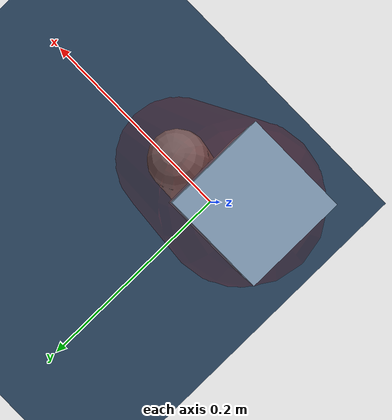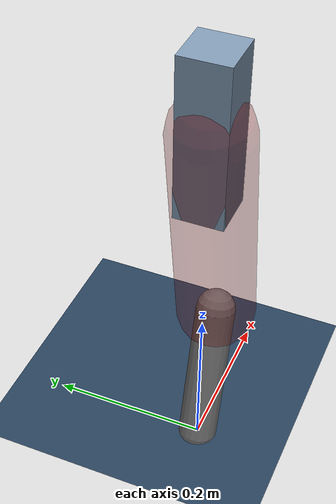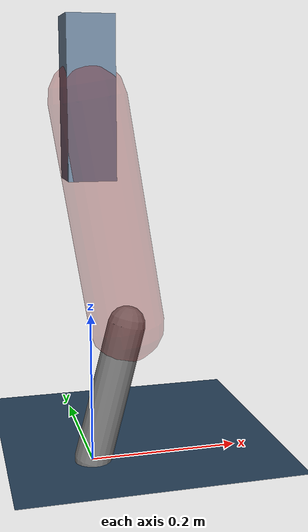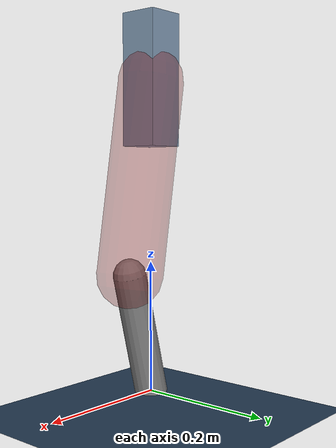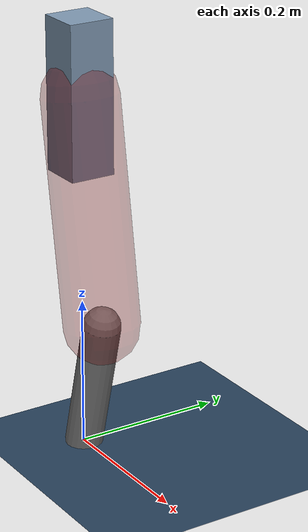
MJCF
<mujoco model="Hopper2D">
	<compiler inertiafromgeom="true" angle="radian" />
	<option timestep="0.001" integrator="implicit" cone="elliptic" solver="Newton" tolerance="1e-10" />

	<default>
		<geom contype="1" conaffinity="1" condim="3" friction="2 0.005 0.0001" solref="0.005 1" />
		<joint limited="true" damping="0.1" />
	</default>

	<asset>
		<texture name="skybox" type="skybox" builtin="gradient" rgb1=".4 .6 .8" rgb2="0 0 0" width="800" height="800" />
		<texture name="grid" type="2d" builtin="checker" rgb1=".1 .2 .3" rgb2=".2 .3 .4" width="300" height="300" mark="edge" markrgb=".2 .3 .4" />
		<material name="ground" texture="grid" texrepeat="1 1" texuniform="true" reflectance="0.1" />
		<material name="leg" rgba="0.5 0.6 0.7 1" />
	</asset>

	<worldbody>

		<geom name="floor" type="plane" size="5 5 0.25" material="ground" />

		<light directional="false" diffuse="0.8 0.8 0.8" specular="0.3 0.3 0.3" pos="0 0 2" dir="0 0 -1" />
		<light mode="targetbodycom" target="base" directional="false" diffuse="0.8 0.8 0.8" specular="0.3 0.3 0.3" pos="0 0 2" dir="0 0 -1" />

		<camera name="fixed" pos="0 -2 1" xyaxes="1 0 0 0 0 1" />
		<camera name="tracking" mode="trackcom" pos="0 -3 1" />

		<body name="root" pos="0 0 0.4771370606867342">
			<joint name="slide_x" type="slide" axis="1 0 0" range="-100 100" />
			<joint name="slide_z" type="slide" axis="0 0 1" range="0 10" />

			<body name="base" pos="0 0 0">
				<geom name="torso" type="box" size="0.03 0.03 0.1" mass="1.947" material="leg" />

				<body name="link1" pos="0 0 0" euler="0 1.4087535205371502 0">
					<joint type="hinge" axis="0 -1 0" pos="0 0 0" name="hinge1" limited="true" range="-3.14 3.14" stiffness="0" damping="0.1" />
					<geom name="thigh" type="capsule" fromto="0 0 0 0.29668865756758855 0 0" size="0.05" rgba="0.5 0 0 0.3" mass="0.9797593754324891" />

					<body name="link2" pos="0.29668865756758855 0 0" euler="0 0.41610096427952636 0">
						<joint type="hinge" axis="0 -1 0" pos="0 0 0" name="hinge2" limited="true" range="-3.14 3.14" stiffness="0" damping="0.1" />
						<geom name="shank" type="capsule" fromto="0 0 0 0.19044840311914568 0 0" size="0.025" mass="0.3928035628072311" />

					</body>
				</body>
			</body>
		</body>
	</worldbody>

	<actuator>
		<motor name="torque1" joint="hinge1" ctrlrange="-60.019347083664385 60.019347083664385" ctrllimited="true" gear="1" />
		<motor name="torque2" joint="hinge2" ctrlrange="-81.61546481653093 81.61546481653093" ctrllimited="true" gear="1" />
	</actuator>
</mujoco>
